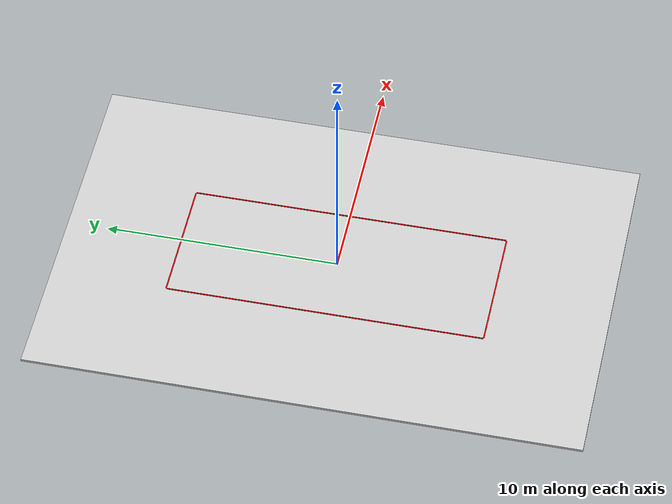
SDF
<sdf version="1.9">
 <world name="NCR_Indoor_Lab">
  <gravity>0 0 -9.81</gravity>
  <plugin filename="gz-sim-physics-system" name="gz::sim::systems::Physics"/>
  <plugin filename="gz-sim-user-commands-system" name="gz::sim::systems::UserCommands"/>
  <plugin filename="gz-sim-scene-broadcaster-system" name="gz::sim::systems::SceneBroadcaster"/>
  <plugin filename="gz-sim-imu-system" name="gz::sim::systems::Imu"/>
  <plugin filename="gz-sim-sensors-system" name="gz::sim::systems::Sensors">
   <render_engine>ogre2</render_engine>
  </plugin>
  <scene><ambient>0.7 0.7 0.7 1.0</ambient><background>0.95 0.95 0.95 1.0</background></scene>
  <light name="sun" type="directional">
   <pose>0 0 10 0 0 0</pose>
   <diffuse>0.85 0.85 0.85 1.0</diffuse>
   <specular>0.2 0.2 0.2 1.0</specular>
   <direction>-0.4 0.2 -1.0</direction>
  </light>
  <model name="floor">
   <static>true</static>
   <link name="link">
    <pose>0 0 -0.05 0 0 0</pose>
    <collision name="collision"><geometry><box><size>15.5 23.5 0.1</size></box></geometry></collision>
    <visual name="visual">
     <geometry><box><size>15.5 23.5 0.1</size></box></geometry>
     <material><ambient>0.8 0.8 0.8 1.0</ambient><diffuse>0.8 0.8 0.8 1.0</diffuse></material>
    </visual>
   </link>
  </model>
  <model name="west_wall_marker">
   <static>true</static>
   <link name="link">
    <pose>-2.775 0 0.01 0 0 0</pose>
    <visual name="visual">
     <geometry><box><size>0.05 13.5 0.02</size></box></geometry>
     <material><ambient>1.0 0.0 0.0 1.0</ambient><diffuse>1.0 0.0 0.0 1.0</diffuse></material>
    </visual>
   </link>
  </model>
  <model name="east_wall_marker">
   <static>true</static>
   <link name="link">
    <pose>2.775 0 0.01 0 0 0</pose>
    <visual name="visual">
     <geometry><box><size>0.05 13.5 0.02</size></box></geometry>
     <material><ambient>1.0 0.0 0.0 1.0</ambient><diffuse>1.0 0.0 0.0 1.0</diffuse></material>
    </visual>
   </link>
  </model>
  <model name="north_wall_marker">
   <static>true</static>
   <link name="link">
    <pose>0 6.775 0.01 0 0 0</pose>
    <visual name="visual">
     <geometry><box><size>5.5 0.05 0.02</size></box></geometry>
     <material><ambient>1.0 0.0 0.0 1.0</ambient><diffuse>1.0 0.0 0.0 1.0</diffuse></material>
    </visual>
   </link>
  </model>
  <model name="south_wall_marker">
   <static>true</static>
   <link name="link">
    <pose>0 -6.775 0.01 0 0 0</pose>
    <visual name="visual">
     <geometry><box><size>5.5 0.05 0.02</size></box></geometry>
     <material><ambient>1.0 0.0 0.0 1.0</ambient><diffuse>1.0 0.0 0.0 1.0</diffuse></material>
    </visual>
   </link>
  </model>
 </world>
</sdf>
